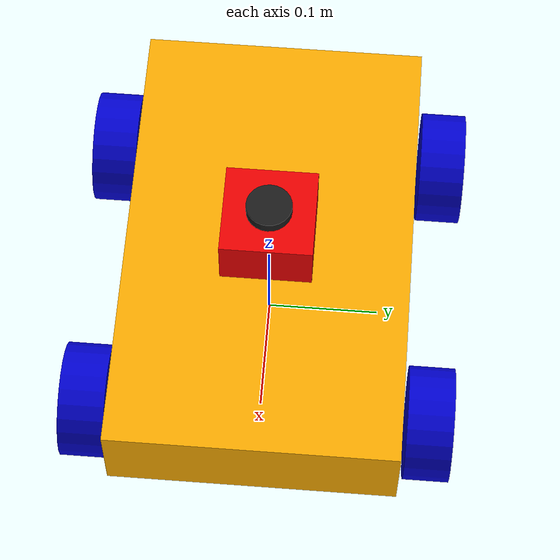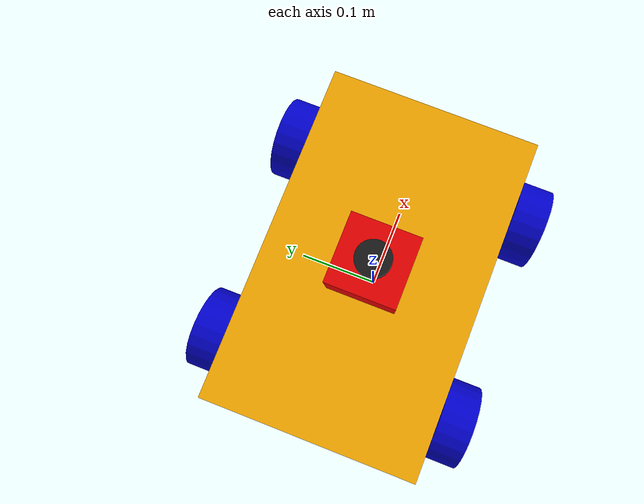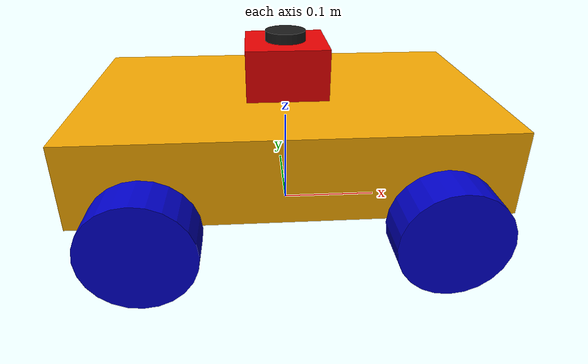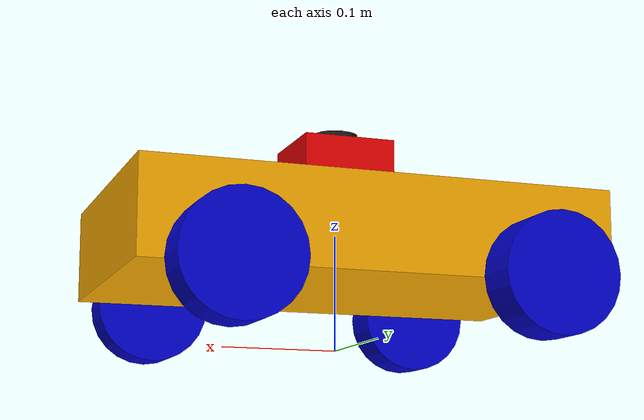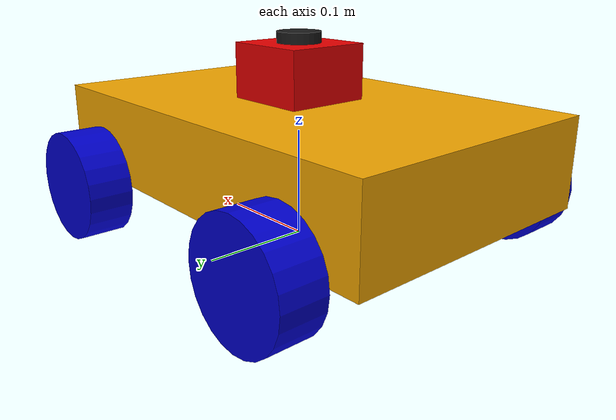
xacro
<?xml version="1.0"?>
<robot xmlns:xacro="http://www.ros.org/wiki/xacro" name="amr_robot">

  <!-- ==================== PROPERTIES ==================== -->
  <xacro:property name="chassis_length" value="0.40"/>
  <xacro:property name="chassis_width" value="0.25"/>
  <xacro:property name="chassis_height" value="0.08"/>
  <xacro:property name="chassis_mass" value="5.0"/>

  <xacro:property name="wheel_radius" value="0.05"/>
  <xacro:property name="wheel_width" value="0.04"/>
  <xacro:property name="wheel_mass" value="0.5"/>

  <xacro:property name="lidar_size" value="0.08"/>
  <xacro:property name="lidar_height" value="0.05"/>
  <xacro:property name="lidar_mass" value="0.3"/>

  <xacro:property name="wheel_x_offset" value="${chassis_length/2 - wheel_radius - 0.02}"/>
  <xacro:property name="wheel_y_offset" value="${chassis_width/2 + wheel_width/2 + 0.005}"/>
  <xacro:property name="wheel_z_offset" value="${-chassis_height/2}"/>

  <!-- ==================== MATERIALS ==================== -->
  <material name="orange">
    <color rgba="0.85 0.55 0.0 1.0"/>
  </material>
  <material name="dark_orange">
    <color rgba="0.95 0.65 0.0 1.0"/>
  </material>
  <material name="blue">
    <color rgba="0.0 0.0 0.8 1.0"/>
  </material>
  <material name="black">
    <color rgba="0.1 0.1 0.1 1.0"/>
  </material>
  <material name="red">
    <color rgba="0.9 0.0 0.0 1.0"/>
  </material>

  <!-- ==================== INERTIA MACROS ==================== -->
  <xacro:macro name="box_inertia" params="m x y z">
    <inertial>
      <mass value="${m}"/>
      <inertia ixx="${m*(y*y+z*z)/12}" ixy="0" ixz="0"
               iyy="${m*(x*x+z*z)/12}" iyz="0"
               izz="${m*(x*x+y*y)/12}"/>
    </inertial>
  </xacro:macro>

  <xacro:macro name="cylinder_inertia" params="m r h">
    <inertial>
      <mass value="${m}"/>
      <inertia ixx="${m*(3*r*r+h*h)/12}" ixy="0" ixz="0"
               iyy="${m*(3*r*r+h*h)/12}" iyz="0"
               izz="${m*r*r/2}"/>
    </inertial>
  </xacro:macro>

  <!-- ==================== BASE FOOTPRINT ==================== -->
  <link name="base_footprint"/>

  <joint name="base_joint" type="fixed">
    <parent link="base_footprint"/>
    <child link="base_link"/>
    <origin xyz="0 0 ${wheel_radius + chassis_height/2}" rpy="0 0 0"/>
  </joint>

  <!-- ==================== CHASSIS ==================== -->
  <link name="base_link">
    <visual>
      <geometry>
        <box size="${chassis_length} ${chassis_width} ${chassis_height}"/>
      </geometry>
      <material name="dark_orange"/>
    </visual>
    <collision>
      <geometry>
        <box size="${chassis_length} ${chassis_width} ${chassis_height}"/>
      </geometry>
    </collision>
    <xacro:box_inertia m="${chassis_mass}" x="${chassis_length}" y="${chassis_width}" z="${chassis_height}"/>
  </link>

  <gazebo reference="base_link">
    <material>Gazebo/Orange</material>
  </gazebo>

  <!-- ==================== WHEEL MACRO ==================== -->
  <xacro:macro name="wheel" params="name x_pos y_pos">
    <!-- Wheel mount (black hub) -->
    <link name="${name}_mount">
      <visual>
        <geometry>
          <cylinder radius="${wheel_radius * 0.9}" length="${wheel_width * 0.8}"/>
        </geometry>
        <material name="black"/>
      </visual>
      <collision>
        <geometry>
          <cylinder radius="${wheel_radius * 0.9}" length="${wheel_width * 0.8}"/>
        </geometry>
      </collision>
      <xacro:cylinder_inertia m="0.1" r="${wheel_radius * 0.9}" h="${wheel_width * 0.8}"/>
    </link>

    <joint name="${name}_mount_joint" type="fixed">
      <parent link="base_link"/>
      <child link="${name}_mount"/>
      <origin xyz="${x_pos} ${y_pos} ${wheel_z_offset}" rpy="${pi/2} 0 0"/>
    </joint>

    <gazebo reference="${name}_mount">
      <material>Gazebo/Black</material>
    </gazebo>

    <!-- Wheel (blue) -->
    <link name="${name}_link">
      <visual>
        <geometry>
          <cylinder radius="${wheel_radius}" length="${wheel_width}"/>
        </geometry>
        <material name="blue"/>
      </visual>
      <collision>
        <geometry>
          <cylinder radius="${wheel_radius}" length="${wheel_width}"/>
        </geometry>
      </collision>
      <xacro:cylinder_inertia m="${wheel_mass}" r="${wheel_radius}" h="${wheel_width}"/>
    </link>

    <joint name="${name}_joint" type="continuous">
      <parent link="base_link"/>
      <child link="${name}_link"/>
      <origin xyz="${x_pos} ${y_pos} ${wheel_z_offset}" rpy="${pi/2} 0 0"/>
      <axis xyz="0 0 -1"/>
      <dynamics damping="0.1" friction="0.1"/>
    </joint>

    <gazebo reference="${name}_link">
      <material>Gazebo/Blue</material>
      <mu1>1.5</mu1>
      <mu2>1.5</mu2>
      <kp>1000000.0</kp>
      <kd>100.0</kd>
      <minDepth>0.001</minDepth>
    </gazebo>
  </xacro:macro>

  <!-- ==================== 4 WHEELS ==================== -->
  <xacro:wheel name="front_left_wheel"  x_pos="${wheel_x_offset}"  y_pos="${wheel_y_offset}"/>
  <xacro:wheel name="front_right_wheel" x_pos="${wheel_x_offset}"  y_pos="${-wheel_y_offset}"/>
  <xacro:wheel name="rear_left_wheel"   x_pos="${-wheel_x_offset}" y_pos="${wheel_y_offset}"/>
  <xacro:wheel name="rear_right_wheel"  x_pos="${-wheel_x_offset}" y_pos="${-wheel_y_offset}"/>

  <!-- ==================== LIDAR HOUSING (RED BOX) ==================== -->
  <link name="lidar_housing_link">
    <visual>
      <geometry>
        <box size="${lidar_size} ${lidar_size} ${lidar_height}"/>
      </geometry>
      <material name="red"/>
    </visual>
    <collision>
      <geometry>
        <box size="${lidar_size} ${lidar_size} ${lidar_height}"/>
      </geometry>
    </collision>
    <xacro:box_inertia m="${lidar_mass}" x="${lidar_size}" y="${lidar_size}" z="${lidar_height}"/>
  </link>

  <joint name="lidar_housing_joint" type="fixed">
    <parent link="base_link"/>
    <child link="lidar_housing_link"/>
    <origin xyz="0 0 ${chassis_height/2 + lidar_height/2}" rpy="0 0 0"/>
  </joint>

  <gazebo reference="lidar_housing_link">
    <material>Gazebo/Red</material>
  </gazebo>

  <!-- ==================== LIDAR SENSOR ==================== -->
  <link name="lidar_link">
    <visual>
      <geometry>
        <cylinder radius="0.02" length="0.01"/>
      </geometry>
      <material name="black"/>
    </visual>
    <xacro:cylinder_inertia m="0.05" r="0.02" h="0.01"/>
  </link>

  <joint name="lidar_joint" type="fixed">
    <parent link="lidar_housing_link"/>
    <child link="lidar_link"/>
    <origin xyz="0 0 ${lidar_height/2 + 0.005}" rpy="0 0 0"/>
  </joint>

  <gazebo reference="lidar_link">
    <material>Gazebo/Black</material>
    <sensor type="ray" name="lidar_sensor">
      <pose>0 0 0 0 0 0</pose>
      <visualize>true</visualize>
      <update_rate>10</update_rate>
      <ray>
        <scan>
          <horizontal>
            <samples>360</samples>
            <resolution>1</resolution>
            <min_angle>-3.14159</min_angle>
            <max_angle>3.14159</max_angle>
          </horizontal>
        </scan>
        <range>
          <min>0.15</min>
          <max>12.0</max>
          <resolution>0.01</resolution>
        </range>
        <noise>
          <type>gaussian</type>
          <mean>0.0</mean>
          <stddev>0.01</stddev>
        </noise>
      </ray>
      <plugin name="gazebo_ros_lidar" filename="libgazebo_ros_ray_sensor.so">
        <ros>
          <remapping>~/out:=scan</remapping>
        </ros>
        <output_type>sensor_msgs/LaserScan</output_type>
        <frame_name>lidar_link</frame_name>
      </plugin>
    </sensor>
  </gazebo>

  <!-- ==================== SKID STEER DRIVE PLUGIN ==================== -->
  <gazebo>
    <plugin name="skid_steer_drive" filename="libgazebo_ros_diff_drive.so">
      <ros>
        <remapping>cmd_vel:=cmd_vel</remapping>
        <remapping>odom:=odom</remapping>
      </ros>

      <update_rate>50</update_rate>

      <!-- Number of wheel pairs -->
      <num_wheel_pairs>2</num_wheel_pairs>

      <!-- Front Wheels -->
      <left_joint>front_left_wheel_joint</left_joint>
      <right_joint>front_right_wheel_joint</right_joint>

      <!-- Rear Wheels -->
      <left_joint>rear_left_wheel_joint</left_joint>
      <right_joint>rear_right_wheel_joint</right_joint>

      <!-- kinematics -->
      <wheel_separation>${2 * wheel_y_offset}</wheel_separation>
      <wheel_separation>${2 * wheel_y_offset}</wheel_separation>

      <wheel_diameter>${2 * wheel_radius}</wheel_diameter>
      <wheel_diameter>${2 * wheel_radius}</wheel_diameter>

      <max_wheel_torque>20.0</max_wheel_torque>
      <max_wheel_acceleration>1.0</max_wheel_acceleration>

      <!-- output -->
      <command_topic>cmd_vel</command_topic>
      <odometry_topic>odom</odometry_topic>
      <odometry_frame>odom</odometry_frame>
      <robot_base_frame>base_footprint</robot_base_frame>

      <publish_odom>true</publish_odom>
      <publish_odom_tf>true</publish_odom_tf>
      <publish_wheel_tf>true</publish_wheel_tf>
    </plugin>
  </gazebo>

  <!-- ==================== JOINT STATE PUBLISHER ==================== -->
  <gazebo>
    <plugin name="joint_state_publisher" filename="libgazebo_ros_joint_state_publisher.so">
      <ros>
        <remapping>joint_states:=joint_states</remapping>
      </ros>
      <joint_name>front_left_wheel_joint</joint_name>
      <joint_name>front_right_wheel_joint</joint_name>
      <joint_name>rear_left_wheel_joint</joint_name>
      <joint_name>rear_right_wheel_joint</joint_name>
      <update_rate>50</update_rate>
    </plugin>
  </gazebo>

</robot>
